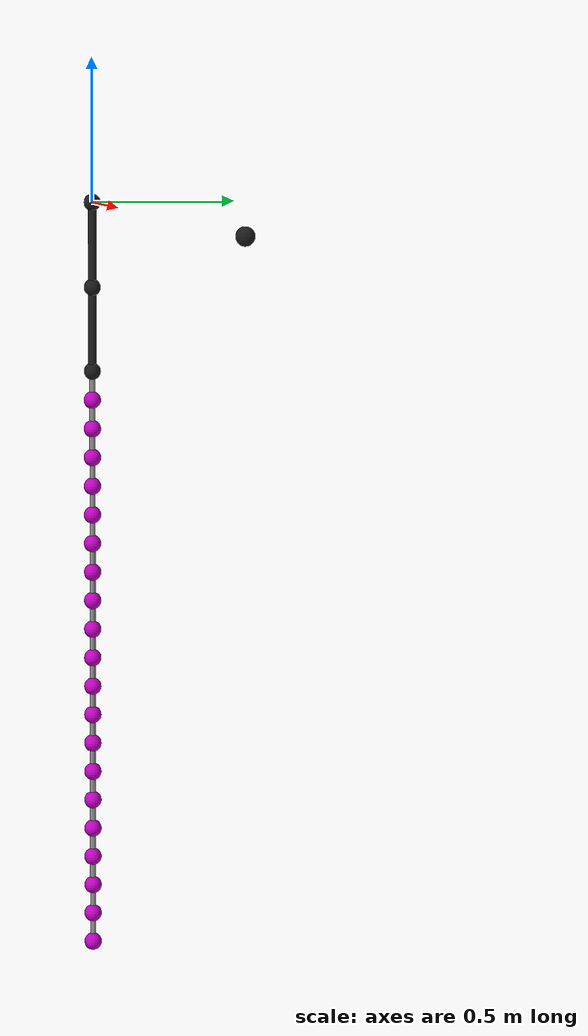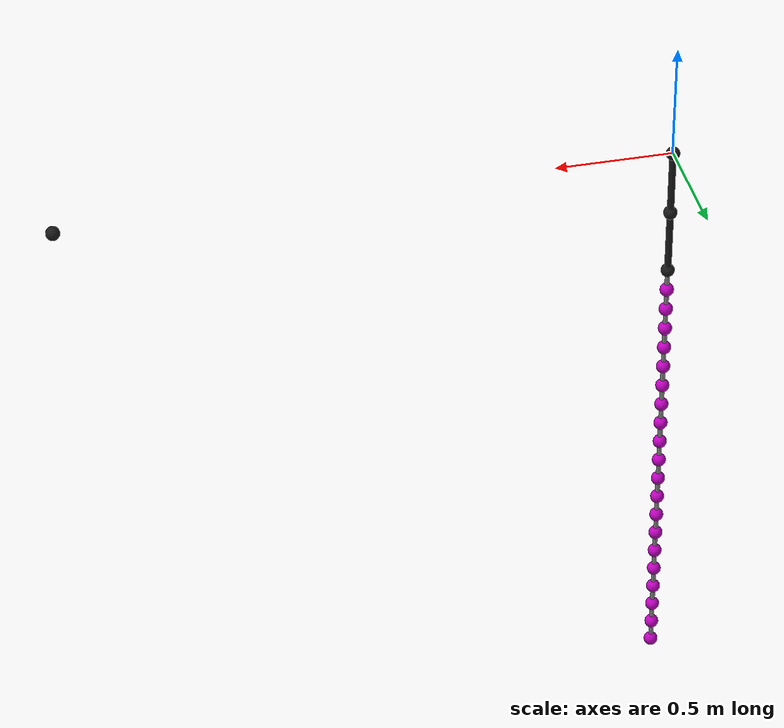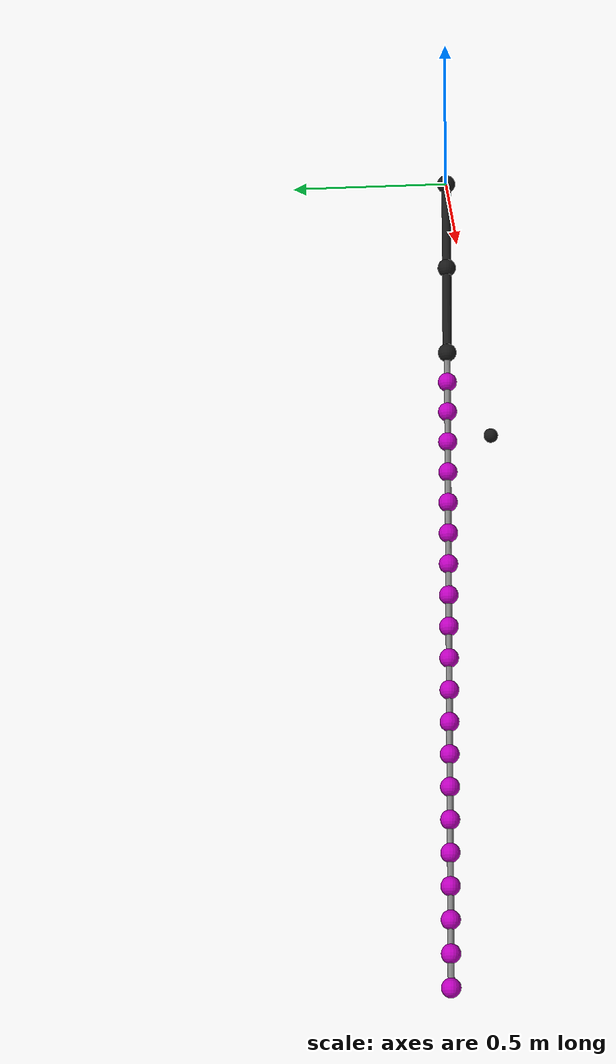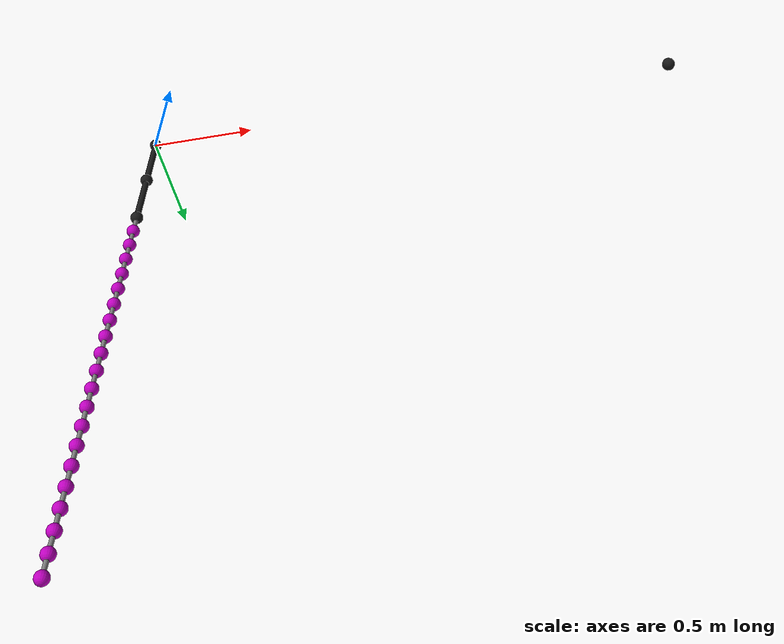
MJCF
<mujoco model="1_2D_model_w_N20">
  <compiler inertiafromgeom="auto" angle="radian" />
   <option timestep="0.0001" iterations="50" integrator="Euler" collision="all" />
   <asset>
     <texture type="skybox" builtin="flat" rgb1="1 1 1" rgb2="1 1 1" width="100" height="100" />
		 <material name="JointColor" 		 rgba="0.1 0.1 0.1 1" />
		 <material name="LimbColor" 		 rgba="0.1 0.1 0.1 1" />
		 <material name="pointMassColor" rgba="0.75 0.0 0.75 1" />
		 <material name="RefMassColor" 	 rgba="0.2 0.9 0.1 1.0" />

   </asset>
   <worldbody>
     <body name="camera" pos="0 0 0">
        <camera name="myCamera" pos="0.7975 -3.19 -0.4785" euler="1.5707 0 0" />
      </body>

      <body name="body_upper_arm" pos="0 0 0" euler="0 0 0">
        <site name='site_upper_arm_start' pos='0 0 0' />
        <joint name="joint_shoulder" ref="0" type="hinge" stiffness="0" pos="0 0 0" axis="0 -1 0" />
         <inertial pos="0 0 -0.129" mass="1.595" diaginertia="0.011917 0.011937 0.001325" />
         <geom name="geom_shoulder" type="sphere" pos="0 0 0" material="JointColor" size="0.0294" mass="0" />
         <geom type="cylinder" fromto="0 0 0 0 0 -0.294" material="LimbColor" size="0.0147" mass="0" />
         <site name="site_upper_arm_COM" pos="0 0 -0.129" />
         <site name="site_upper_arm_end" pos="0 0 -0.294" />
         <body name="body_fore_arm" pos="0 0 -0.294" euler="0 0 0">
           <site name='site_fore_arm_start' pos='0 0 0' />
           <joint name="joint_elbow" ref="0" type="hinge" stiffness="0" pos="0 0 0" axis="0 -1 0" />
            <inertial pos="0 0 -0.112" mass="0.869" diaginertia="0.004765 0.004855 0.000472" />
            <geom name="elbowGeom" type="sphere" pos="0 0 0" material="JointColor" size="0.0294" mass="0" />
            <geom type="cylinder" fromto="0 0 0 0 0 -0.291" material="LimbColor" size="0.0147" mass="0" />
            <site name="site_fore_arm_COM" pos="0 0 -0.112" />
            <site name='site_whip_COM' pos='0 0 -0.291' />
            <site name='site_fore_arm_end' pos='0 0 -0.291' />
            <geom name="geom_EE" type="sphere" pos="0 0 -0.291" material="JointColor" size="0.0294" mass="0" />
            <body name="body_whip_node1" euler="0 0 0" pos="0 0 -0.291">
              <joint name="joint_whip_node1_Y" type="hinge" axis="0 -1 0" pos="0 0 0" springref="0" stiffness="0" damping="0" />
               <geom type="cylinder" fromto="0 0 0 0 0 -0.1000" size="0.0100000" mass="0" />
               <geom name="geom_whip_node1" type="sphere" material="pointMassColor" pos="0 0 -0.1000" size="0.0300000" mass="0.1000000" />
               <body name="body_whip_node2" euler="0 0 0" pos="0 0 -0.1000">
                 <joint name="joint_whip_node2_Y" type="hinge" axis="0 -1 0" pos="0 0 0" springref="0" stiffness="0.05" damping="0.005" />
                  <geom type="cylinder" fromto="0 0 0 0 0 -0.1000" size="0.0100000" mass="0" />
                  <geom name="geom_whip_node2" type="sphere" material="pointMassColor" pos="0 0 -0.1000" size="0.0300000" mass="0.1000000" />
                  <body name="body_whip_node3" euler="0 0 0" pos="0 0 -0.1000">
                    <joint name="joint_whip_node3_Y" type="hinge" axis="0 -1 0" pos="0 0 0" springref="0" stiffness="0.05" damping="0.005" />
                     <geom type="cylinder" fromto="0 0 0 0 0 -0.1000" size="0.0100000" mass="0" />
                     <geom name="geom_whip_node3" type="sphere" material="pointMassColor" pos="0 0 -0.1000" size="0.0300000" mass="0.1000000" />
                     <body name="body_whip_node4" euler="0 0 0" pos="0 0 -0.1000">
                       <joint name="joint_whip_node4_Y" type="hinge" axis="0 -1 0" pos="0 0 0" springref="0" stiffness="0.05" damping="0.005" />
                        <geom type="cylinder" fromto="0 0 0 0 0 -0.1000" size="0.0100000" mass="0" />
                        <geom name="geom_whip_node4" type="sphere" material="pointMassColor" pos="0 0 -0.1000" size="0.0300000" mass="0.1000000" />
                        <body name="body_whip_node5" euler="0 0 0" pos="0 0 -0.1000">
                          <joint name="joint_whip_node5_Y" type="hinge" axis="0 -1 0" pos="0 0 0" springref="0" stiffness="0.05" damping="0.005" />
                           <geom type="cylinder" fromto="0 0 0 0 0 -0.1000" size="0.0100000" mass="0" />
                           <geom name="geom_whip_node5" type="sphere" material="pointMassColor" pos="0 0 -0.1000" size="0.0300000" mass="0.1000000" />
                           <body name="body_whip_node6" euler="0 0 0" pos="0 0 -0.1000">
                             <joint name="joint_whip_node6_Y" type="hinge" axis="0 -1 0" pos="0 0 0" springref="0" stiffness="0.05" damping="0.005" />
                              <geom type="cylinder" fromto="0 0 0 0 0 -0.1000" size="0.0100000" mass="0" />
                              <geom name="geom_whip_node6" type="sphere" material="pointMassColor" pos="0 0 -0.1000" size="0.0300000" mass="0.1000000" />
                              <body name="body_whip_node7" euler="0 0 0" pos="0 0 -0.1000">
                                <joint name="joint_whip_node7_Y" type="hinge" axis="0 -1 0" pos="0 0 0" springref="0" stiffness="0.05" damping="0.005" />
                                 <geom type="cylinder" fromto="0 0 0 0 0 -0.1000" size="0.0100000" mass="0" />
                                 <geom name="geom_whip_node7" type="sphere" material="pointMassColor" pos="0 0 -0.1000" size="0.0300000" mass="0.1000000" />
                                 <body name="body_whip_node8" euler="0 0 0" pos="0 0 -0.1000">
                                   <joint name="joint_whip_node8_Y" type="hinge" axis="0 -1 0" pos="0 0 0" springref="0" stiffness="0.05" damping="0.005" />
                                    <geom type="cylinder" fromto="0 0 0 0 0 -0.1000" size="0.0100000" mass="0" />
                                    <geom name="geom_whip_node8" type="sphere" material="pointMassColor" pos="0 0 -0.1000" size="0.0300000" mass="0.1000000" />
                                    <body name="body_whip_node9" euler="0 0 0" pos="0 0 -0.1000">
                                      <joint name="joint_whip_node9_Y" type="hinge" axis="0 -1 0" pos="0 0 0" springref="0" stiffness="0.05" damping="0.005" />
                                       <geom type="cylinder" fromto="0 0 0 0 0 -0.1000" size="0.0100000" mass="0" />
                                       <geom name="geom_whip_node9" type="sphere" material="pointMassColor" pos="0 0 -0.1000" size="0.0300000" mass="0.1000000" />
                                       <body name="body_whip_node10" euler="0 0 0" pos="0 0 -0.1000">
                                         <joint name="joint_whip_node10_Y" type="hinge" axis="0 -1 0" pos="0 0 0" springref="0" stiffness="0.05" damping="0.005" />
                                          <geom type="cylinder" fromto="0 0 0 0 0 -0.1000" size="0.0100000" mass="0" />
                                          <geom name="geom_whip_node10" type="sphere" material="pointMassColor" pos="0 0 -0.1000" size="0.0300000" mass="0.1000000" />
                                          <body name="body_whip_node11" euler="0 0 0" pos="0 0 -0.1000">
                                            <joint name="joint_whip_node11_Y" type="hinge" axis="0 -1 0" pos="0 0 0" springref="0" stiffness="0.05" damping="0.005" />
                                            <geom type="cylinder" fromto="0 0 0 0 0 -0.1000" size="0.0100000" mass="0" />
                                            <geom name="geom_whip_node11" type="sphere" material="pointMassColor" pos="0 0 -0.1000" size="0.0300000" mass="0.1000000" />
                                            <body name="body_whip_node12" euler="0 0 0" pos="0 0 -0.1000">
                                              <joint name="joint_whip_node12_Y" type="hinge" axis="0 -1 0" pos="0 0 0" springref="0" stiffness="0.05" damping="0.005" />
                                              <geom type="cylinder" fromto="0 0 0 0 0 -0.1000" size="0.0100000" mass="0" />
                                              <geom name="geom_whip_node12" type="sphere" material="pointMassColor" pos="0 0 -0.1000" size="0.0300000" mass="0.1000000" />
                                              <body name="body_whip_node13" euler="0 0 0" pos="0 0 -0.1000">
                                                <joint name="joint_whip_node13_Y" type="hinge" axis="0 -1 0" pos="0 0 0" springref="0" stiffness="0.05" damping="0.005" />
                                                <geom type="cylinder" fromto="0 0 0 0 0 -0.1000" size="0.0100000" mass="0" />
                                                <geom name="geom_whip_node13" type="sphere" material="pointMassColor" pos="0 0 -0.1000" size="0.0300000" mass="0.1000000" />
                                                <body name="body_whip_node14" euler="0 0 0" pos="0 0 -0.1000">
                                                    <joint name="joint_whip_node14_Y" type="hinge" axis="0 -1 0" pos="0 0 0" springref="0" stiffness="0.05" damping="0.005" />
                                                    <geom type="cylinder" fromto="0 0 0 0 0 -0.1000" size="0.0100000" mass="0" />
                                                    <geom name="geom_whip_node14" type="sphere" material="pointMassColor" pos="0 0 -0.1000" size="0.0300000" mass="0.1000000" />
                                                    <body name="body_whip_node15" euler="0 0 0" pos="0 0 -0.1000">
                                                        <joint name="joint_whip_node15_Y" type="hinge" axis="0 -1 0" pos="0 0 0" springref="0" stiffness="0.05" damping="0.005" />
                                                        <geom type="cylinder" fromto="0 0 0 0 0 -0.1000" size="0.0100000" mass="0" />
                                                        <geom name="geom_whip_node15" type="sphere" material="pointMassColor" pos="0 0 -0.1000" size="0.0300000" mass="0.1000000" />
                                                        <body name="body_whip_node16" euler="0 0 0" pos="0 0 -0.1000">
                                                            <joint name="joint_whip_node16_Y" type="hinge" axis="0 -1 0" pos="0 0 0" springref="0" stiffness="0.05" damping="0.005" />
                                                            <geom type="cylinder" fromto="0 0 0 0 0 -0.1000" size="0.0100000" mass="0" />
                                                            <geom name="geom_whip_node16" type="sphere" material="pointMassColor" pos="0 0 -0.1000" size="0.0300000" mass="0.1000000" />
                                                            <body name="body_whip_node17" euler="0 0 0" pos="0 0 -0.1000">
                                                                <joint name="joint_whip_node17_Y" type="hinge" axis="0 -1 0" pos="0 0 0" springref="0" stiffness="0.05" damping="0.005" />
                                                                <geom type="cylinder" fromto="0 0 0 0 0 -0.1000" size="0.0100000" mass="0" />
                                                                <geom name="geom_whip_node17" type="sphere" material="pointMassColor" pos="0 0 -0.1000" size="0.0300000" mass="0.1000000" />
                                                                <body name="body_whip_node18" euler="0 0 0" pos="0 0 -0.1000">
                                                                    <joint name="joint_whip_node18_Y" type="hinge" axis="0 -1 0" pos="0 0 0" springref="0" stiffness="0.05" damping="0.005" />
                                                                    <geom type="cylinder" fromto="0 0 0 0 0 -0.1000" size="0.0100000" mass="0" />
                                                                    <geom name="geom_whip_node18" type="sphere" material="pointMassColor" pos="0 0 -0.1000" size="0.0300000" mass="0.1000000" />
                                                                    <body name="body_whip_node19" euler="0 0 0" pos="0 0 -0.1000">
                                                                        <joint name="joint_whip_node19_Y" type="hinge" axis="0 -1 0" pos="0 0 0" springref="0" stiffness="0.05" damping="0.005" />
                                                                        <geom type="cylinder" fromto="0 0 0 0 0 -0.1000" size="0.0100000" mass="0" />
                                                                        <geom name="geom_whip_node19" type="sphere" material="pointMassColor" pos="0 0 -0.1000" size="0.0300000" mass="0.1000000" />
                                                                        <body name="body_whip_node20" euler="0 0 0" pos="0 0 -0.1000">
                                                                            <joint name="joint_whip_node20_Y" type="hinge" axis="0 -1 0" pos="0 0 0" springref="0" stiffness="0.05" damping="0.005" />
                                                                            <geom type="cylinder" fromto="0 0 0 0 0 -0.1000" size="0.0100000" mass="0" />
                                                                            <geom name="geom_whip_node20" type="sphere" material="pointMassColor" pos="0 0 -0.1000" size="0.0300000" mass="0.1000000" />
                                                                            <site name='site_whip_tip' pos='0 0 -0.1000' />
                                                                        </body>
                                                                    </body>
                                                                </body>
                                                            </body>
                                                        </body>
                                                    </body>
                                                </body>
                                               </body>
                                            </body>
                                            </body>
                                       </body>
                                    </body>
                                 </body>
                              </body>
                           </body>
                        </body>
                     </body>
                  </body>
               </body>
            </body>
            <!-- === [ N, L, M, k, b, rho ] = [10,1.000000,1.000000,0.050000,0.005000,1.000000] -->
         </body>
      </body>
      <geom name="geom_target" type="sphere" pos="2.5850  0.0000  0.0000" material="LimbColor" mass="0" size="0.03" />
   </worldbody>

   <actuator>
     <motor joint="joint_shoulder" name="motor_shoulder" forcelimited="false" />
      <motor joint="joint_elbow" name="motor_elbow" forcelimited="false" />
   </actuator>

</mujoco>
